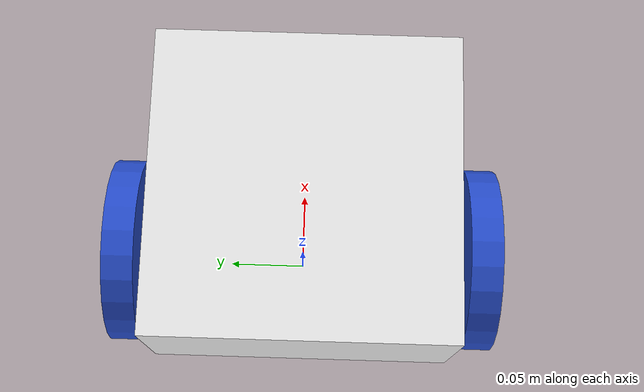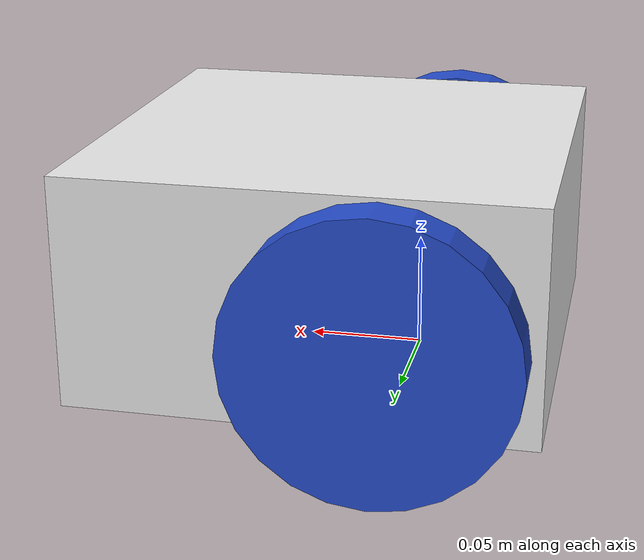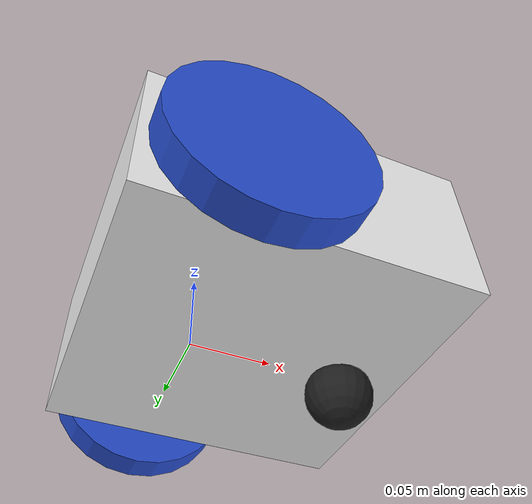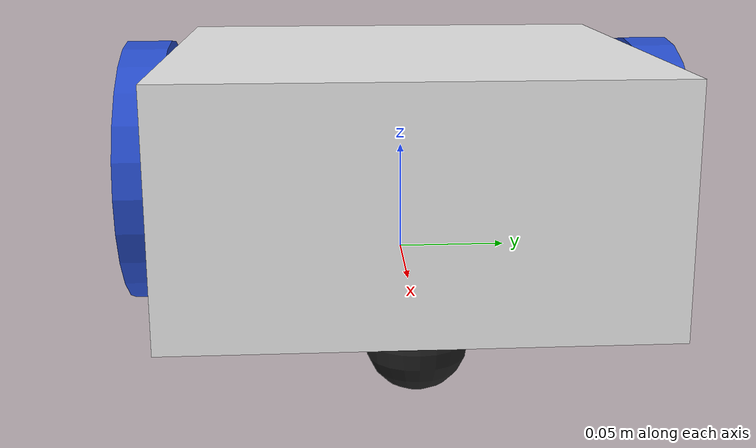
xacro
<?xml version="1.0"?>
<robot xmlns:xacro="http://www.ros.org/wiki/xacro"  name="robot">

    <xacro:include filename="inertial_macros.xacro"/>

    <!-- base link -->

    <link name="base_link"/>

    <!-- chassis -->
    <joint name="chassis_joint" type="fixed">
        <parent link="base_link"/>
        <child link="chassis"/>
        <origin xyz="-0.065 0 0"/>
    </joint>

    <link name="chassis" >
        <visual>
            <origin xyz="0.1 0 0.05"/>
            <geometry>
                <box size="0.2 0.2 0.1"/>
            </geometry>
        </visual>
        <collision>
            <origin xyz="0.1 0 0.05"/>
            <geometry>
                <box size="0.2 0.2 0.1"/>
            </geometry>
        </collision>
        <xacro:inertial_box mass="2" x="0.2" y="0.2" z="0.1">
            <origin xyz="0.1 0 0.05" rpy="0 0 0"/>
        </xacro:inertial_box>
    </link>
    <gazebo reference="chassis">
        <material>Gazebo/White</material>
    </gazebo>

    <!-- right wheel -->
    <joint name="right_wheel_joint" type="continuous">
        <parent link="base_link"/>
        <child link="right_wheel"/>
        <origin xyz="0 -0.115 0.04" rpy="${pi/2} 0 0" />
        <axis xyz="0 0 -1"/>
    </joint>

    <link name="right_wheel">
        <visual>
            <geometry>
                <cylinder radius="0.06" length="0.02"/>
            </geometry>
        </visual>
        <collision>
            <geometry>
                <cylinder radius="0.06" length="0.02"/>
            </geometry>
        </collision>
        <xacro:inertial_cylinder mass="0.1" length="0.02" radius="0.06">
            <origin xyz="0 0 0" rpy="0 0 0"/>
        </xacro:inertial_cylinder>
    </link>

    <gazebo reference="right_wheel">
        <material>Gazebo/Blue</material>
    </gazebo>

    <!-- left wheel -->
    <joint name="left_wheel_joint" type="continuous">
        <parent link="base_link"/>
        <child link="left_wheel"/>
        <origin xyz="0 0.115 0.04" rpy="-${pi/2} 0 0" />
        <axis xyz="0 0 1"/>
    </joint>

    <link name="left_wheel">
        <visual>
            <geometry>
                <cylinder radius="0.06" length="0.02"/>
            </geometry>
        </visual>
        <collision>
            <geometry>
                <cylinder radius="0.06" length="0.02"/>
            </geometry>
        </collision>
        <xacro:inertial_cylinder mass="0.1" length="0.02" radius="0.06">
            <origin xyz="0 0 0" rpy="0 0 0"/>
        </xacro:inertial_cylinder>
    </link>

    <gazebo reference="left_wheel">
        <material>Gazebo/Blue</material>
    </gazebo>

     <!-- CASTER WHEEL LINK -->

    <joint name="caster_wheel_joint" type="fixed">
        <parent link="base_link"/>
        <child link="caster_wheel"/>
        <origin xyz="0.096 0 -0.010"/>
    </joint>

    <link name="caster_wheel">
        <visual>
            <geometry>
                <sphere radius="0.021"/>
            </geometry>
        </visual>
        <collision>
            <geometry>
                <sphere radius="0.021"/>
            </geometry>
        </collision>
        <xacro:inertial_sphere mass="0.5" radius="0.021">
            <origin xyz="0 0 0" rpy="0 0 0"/>
        </xacro:inertial_sphere>
    </link>

    <gazebo reference="caster_wheel">
        <material>Gazebo/Black</material>
        <mu1 value="0.001"/>
        <mu2 value="0.001"/>
    </gazebo>

</robot>
